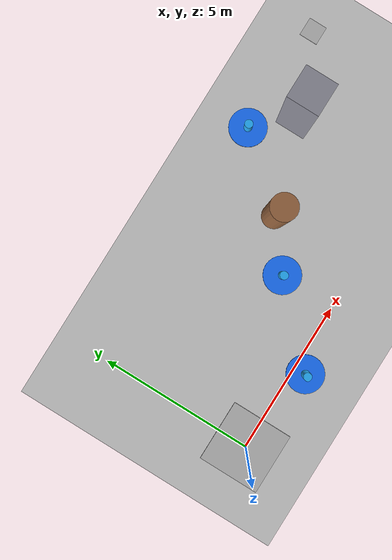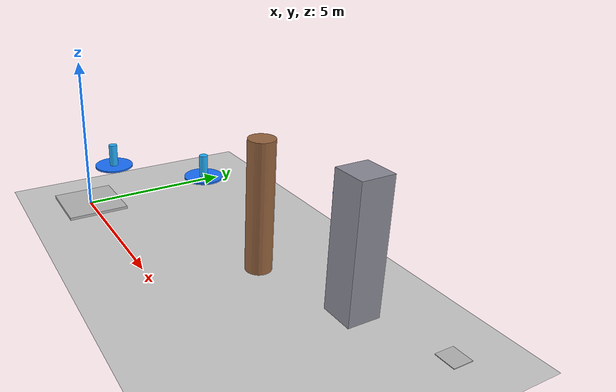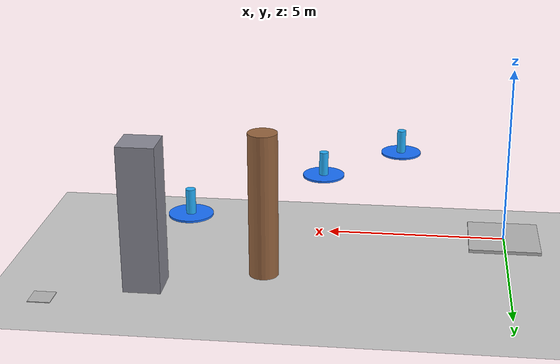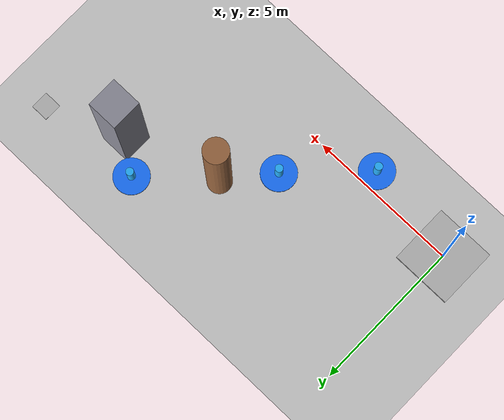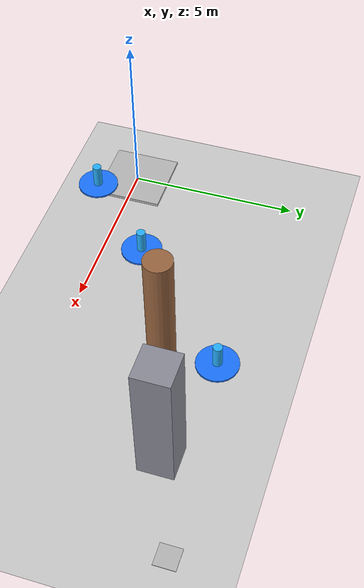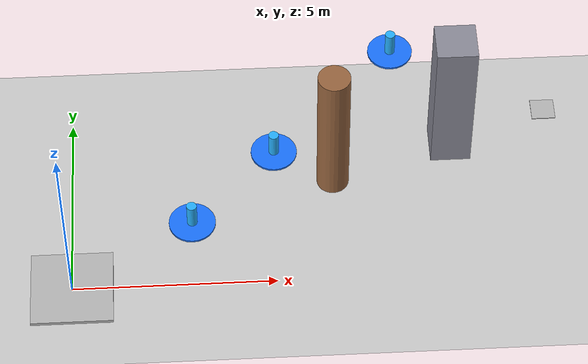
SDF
<?xml version="1.0" ?>
<sdf version="1.6">
  <world name="practice_world">

    <!-- ===== 기본 환경 ===== -->
    <include><uri>model://sun</uri></include>
    <include><uri>model://ground_plane</uri></include>

    <!-- 물리 엔진 설정 -->
    <physics name='default_physics' default='0' type='ode'>
      <gravity>0 0 -9.8066</gravity>
      <ode>
        <solver>
          <type>quick</type>
          <iters>10</iters>
          <sor>1.3</sor>
        </solver>
        <constraints>
          <cfm>0</cfm>
          <erp>0.2</erp>
          <contact_max_correcting_vel>100</contact_max_correcting_vel>
          <contact_surface_layer>0.001</contact_surface_layer>
        </constraints>
      </ode>
      <max_step_size>0.004</max_step_size>
      <real_time_factor>1</real_time_factor>
      <real_time_update_rate>250</real_time_update_rate>
    </physics>

    <!-- ===== Start 표시 ===== -->
    <include>
      <uri>model://start_marker</uri>
      <name>start_pad</name>
      <pose>0 0 0 0 0 0</pose>
    </include>

    <!-- ===== Waypoint 시각화 ===== -->
    <include>
      <uri>model://waypoint_marker</uri>
      <name>wp1_marker</name>
      <pose>3.0 0.0 2.5 0 0 0</pose>
    </include>
    <include>
      <uri>model://waypoint_marker</uri>
      <name>wp2_marker</name>
      <pose>5.0 2.0 2.5 0 0 0</pose>
    </include>
    <include>
      <uri>model://waypoint_marker</uri>
      <name>wp3_marker</name>
      <pose>8.0 5.0 2.5 0 0 0</pose>
    </include>

    <!-- ===== 장애물 ===== -->
    <!-- 장애물 1: 원통 (전봇대 모사) -->
    <model name="obstacle_cylinder_1">
      <static>true</static>
      <pose>6.5 3.0 2.0 0 0 0</pose>
      <link name="link">
        <collision name="collision">
          <geometry>
            <cylinder><radius>0.4</radius><length>4.0</length></cylinder>
          </geometry>
        </collision>
        <visual name="visual">
          <geometry>
            <cylinder><radius>0.4</radius><length>4.0</length></cylinder>
          </geometry>
          <material>
            <ambient>0.5 0.35 0.2 1</ambient>
            <diffuse>0.6 0.4 0.25 1</diffuse>
          </material>
        </visual>
      </link>
    </model>

    <!-- 장애물 2: 사각 박스 (작은 빌딩 모사) -->
    <model name="obstacle_box_1">
      <static>true</static>
      <pose>9.5 4.0 2.0 0 0 0</pose>
      <link name="link">
        <collision name="collision">
          <geometry>
            <box><size>1.0 1.0 4.0</size></box>
          </geometry>
        </collision>
        <visual name="visual">
          <geometry>
            <box><size>1.0 1.0 4.0</size></box>
          </geometry>
          <material>
            <ambient>0.45 0.45 0.5 1</ambient>
            <diffuse>0.55 0.55 0.6 1</diffuse>
          </material>
        </visual>
      </link>
    </model>

    <!-- ===== 랜딩 패드 ===== -->
    <include>
      <uri>model://landing_pad</uri>
      <name>landing_pad</name>
      <pose>12.0 5.0 0 0 0 0</pose>
    </include>

    <!-- 카메라 시점 (Gazebo에서 보기 좋게) -->
    <gui fullscreen='0'>
      <camera name='user_camera'>
        <pose>-3 -3 8 0 0.7 0.5</pose>
      </camera>
    </gui>

  </world>
</sdf>

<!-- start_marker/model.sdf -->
<sdf version="1.4">
    <model name="start_marker">
      <pose>0 0 0  0 0 0</pose>
      <static>true</static>
      <link name="body">
        <visual name="visual">
          <geometry>
            <mesh><uri>model://start_marker/meshes/marker.obj</uri></mesh>
          </geometry>
        </visual>
      </link>
    </model>
</sdf>

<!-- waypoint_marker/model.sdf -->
<sdf version="1.7">
  <model name="waypoint_marker">
    <static>true</static>
    <link name="waypoint_link">
      <visual name="waypoint_disc">
        <pose>0 0 0.025 0 0 0</pose>
        <geometry><cylinder><radius>0.55</radius><length>0.05</length></cylinder></geometry>
        <material>
          <ambient>0.05 0.25 0.80 1</ambient>
          <diffuse>0.10 0.45 1.00 1</diffuse>
          <emissive>0.02 0.08 0.22 1</emissive>
        </material>
      </visual>
      <visual name="waypoint_beacon">
        <pose>0 0 0.35 0 0 0</pose>
        <geometry><cylinder><radius>0.12</radius><length>0.65</length></cylinder></geometry>
        <material>
          <ambient>0.10 0.55 1.00 1</ambient>
          <diffuse>0.15 0.70 1.00 1</diffuse>
          <emissive>0.04 0.18 0.35 1</emissive>
        </material>
      </visual>
    </link>
  </model>
</sdf>

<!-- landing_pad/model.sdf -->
<sdf version="1.5">
  <model name="landing_pad">
    <pose>5.0 0 0.01 0 0 0</pose>
    <static>true</static>
    <link name="link">
      <inertial>
        <mass>0.5</mass>
        <inertia>
          <ixx>0.001</ixx>
          <ixy>0</ixy>
          <ixz>0</ixz>
          <iyy>0.001</iyy>
          <iyz>0</iyz>
          <izz>0.001</izz>
        </inertia>
      </inertial>
      <collision name="collision">
        <geometry>
          <box>
            <size>0.6 0.6 0.02</size>
          </box>
        </geometry>
      </collision>
      <visual name="visual">
        <geometry>
          <box>
            <size>0.6 0.6 0.02</size>
          </box>
        </geometry>
        <material>
          <script>
            <uri>model://landing_pad/materials/scripts</uri>
	          <uri>model://landing_pad/materials/textures</uri>
            <name>Cube/landing_pad</name>
          </script>
        </material>
      </visual>
    </link>
  </model>
</sdf>
